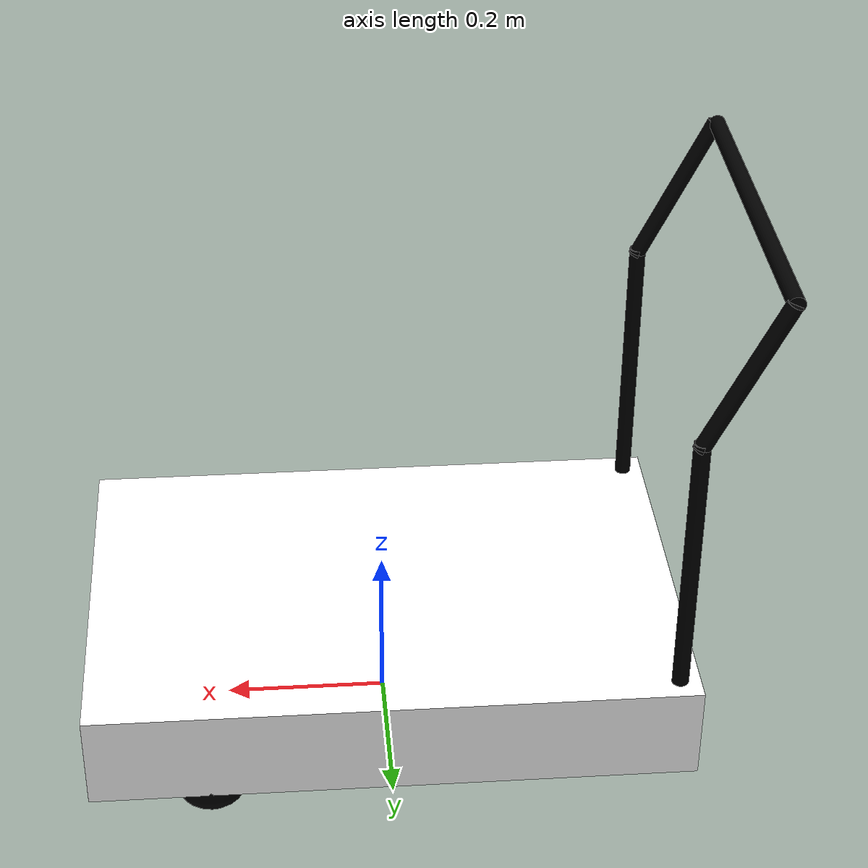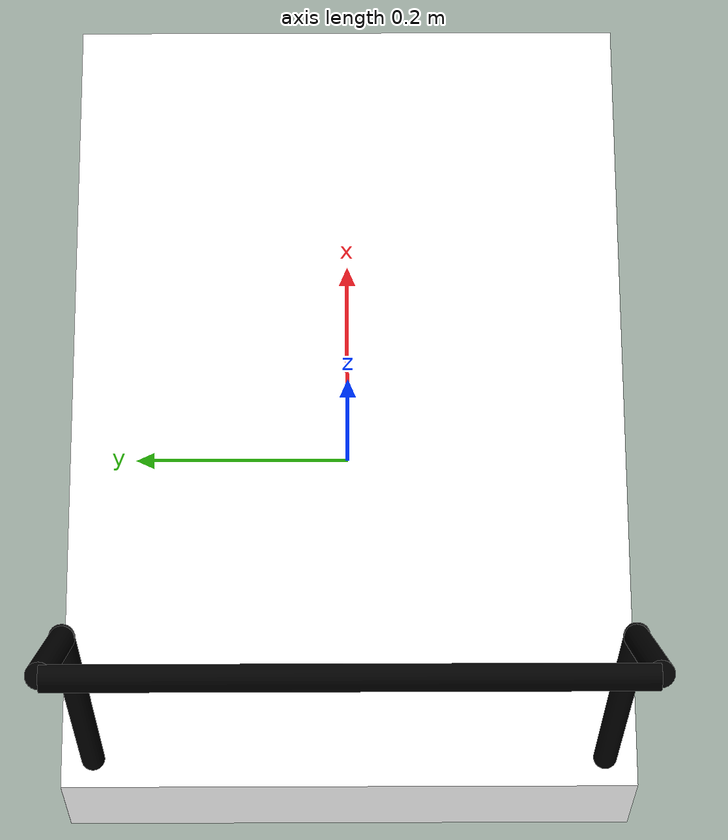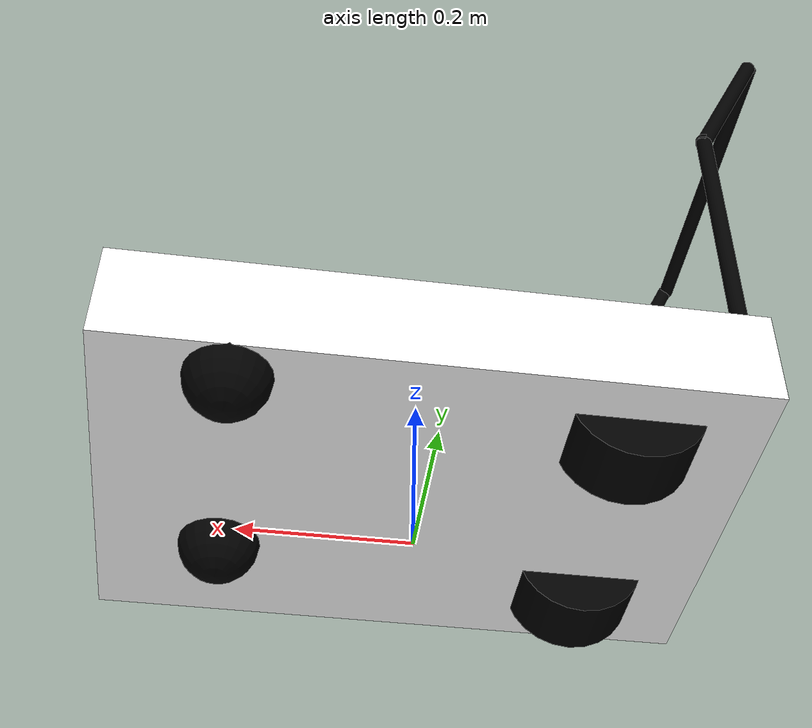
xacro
<?xml version="1.0"?>
<robot name="wheelbarrow" xmlns:xacro="http://ros.org/wiki/xacro">
	<!-- General Macro -->
	<xacro:include filename="$(find config_robot)/urdf/lib/common.urdf.xacro" />
	<!-- Wheel Macro -->
	<xacro:include filename="$(find config_robot)/urdf/lib/wheel/wheel.urdf.xacro" />
	<xacro:include filename="$(find config_robot)/urdf/lib/wheel/caster_wheel.urdf.xacro" />
	<!-- IMU Macro -->
	<xacro:include filename="$(find config_robot)/urdf/lib/sensor/block_imu.urdf.xacro" />
	<!-- Lidar Macro -->
	<xacro:include filename="$(find config_robot)/urdf/lib/sensor/block_lidar.urdf.xacro" />

	<!-- PROPERTY LIST -->
	<!--All units in m-kg-s-radians unit system -->
	<xacro:property name="M_PI_2" value="${pi/2.0}" />

	<!-- AGV Base -->
	<xacro:property name="agv_base_height" value="0.12" />
	<xacro:property name="agv_base_lift" value="0.05" />
	<xacro:property name="agv_base_width" value="0.495" />
	<xacro:property name="agv_base_length" value="0.73" />
	<xacro:property name="agv_base_mass" value="40" />
	<xacro:property name="agv_wheel_height" value="0.07825" />

	<!-- BASE-FOOTPRINT -->
	<!-- base_footprint is a fictitious link(frame) that is on the ground right below base_link origin -->
	<link name="base_footprint"/>

	<!-- AGV_BASE_LINK -->
	<joint name="agv_base_joint" type="fixed">
		<origin xyz="0 0 ${agv_base_height/2+agv_base_lift}" rpy="0 0 0" />
		<parent link="base_footprint"/>
		<child link="agv_base_link" />
	</joint>

	<link name="agv_base_link">
		<!-- body -->
		<xacro:inertia_cuboid mass="${agv_base_mass}" d="${agv_base_length}" w="${agv_base_width}" h="${agv_base_height}" />
		<xacro:collision_cuboid length="${agv_base_length}" width="${agv_base_width}" height="${agv_base_height}" />
		<xacro:visual_cuboid length="${agv_base_length}" width="${agv_base_width}" height="${agv_base_height}" material="White" />

		<!-- handle -->
		<xacro:property name="x" value="0.34"/>
		<xacro:property name="y" value="0.22"/>
		<xacro:property name="radius" value="0.01"/>
		<xacro:property name="base_length" value="0.4"/>
		<xacro:property name="upper_length" value="0.2"/>
		<xacro:property name="handle_length" value="${2*y}"/>
		<xacro:property name="upper_angle" value="${pi/7}"/>

		<!-- handle left_base -->
		<xacro:property name="left_base_xyz" value="-${x} ${y} ${base_length/2}"/>
		<xacro:property name="left_base_rpy" value="0.0 0.0 0.0"/>
		<xacro:inertia_cylinder	mass="0.02" radius="${radius}" length="${base_length}" xyz="${left_base_xyz}" rpy="${left_base_rpy}"/>
		<xacro:collision_cylinder radius="${radius}" length="${base_length}" xyz="${left_base_xyz}" rpy="${left_base_rpy}"/>
		<xacro:visual_cylinder radius="${radius}" length="${base_length}" xyz="${left_base_xyz}" rpy="${left_base_rpy}" />

		<!-- handle right_base -->
		<xacro:property name="right_base_xyz" value="-${x} -${y} ${base_length/2}"/>
		<xacro:property name="right_base_rpy" value="0.0 0.0 0.0"/>
		<xacro:inertia_cylinder	mass="0.02" radius="${radius}" length="${base_length}" xyz="${right_base_xyz}" rpy="${right_base_rpy}"/>
		<xacro:collision_cylinder radius="${radius}" length="${base_length}" xyz="${right_base_xyz}" rpy="${right_base_rpy}"/>
		<xacro:visual_cylinder radius="${radius}" length="${base_length}" xyz="${right_base_xyz}" rpy="${right_base_rpy}" />

		<!-- handle left_upper -->
		<xacro:property name="left_upper_xyz"	value="-${x + upper_length*0.48*sin(upper_angle)} ${y}
																					${base_length + upper_length*0.45*cos(upper_angle)}"/>
		<xacro:property name="left_upper_rpy" value="0.0 -${upper_angle} 0.0"/>
		<xacro:inertia_cylinder	mass="0.02" radius="${radius}" length="${upper_length}" xyz="${left_upper_xyz}" rpy="${left_upper_rpy}"/>
		<xacro:collision_cylinder radius="${radius}" length="${upper_length}" xyz="${left_upper_xyz}" rpy="${left_upper_rpy}"/>
		<xacro:visual_cylinder radius="${radius}" length="${upper_length}" xyz="${left_upper_xyz}" rpy="${left_upper_rpy}" />

		<!-- handle right_upper -->
		<xacro:property name="right_upper_xyz"	value="-${x + upper_length*0.48*sin(upper_angle)} -${y}
																						${base_length + upper_length*0.45*cos(upper_angle)}"/>
		<xacro:property name="right_upper_rpy" value="0.0 -${upper_angle} 0.0"/>
		<xacro:inertia_cylinder	mass="0.02" radius="${radius}" length="${upper_length}" xyz="${right_upper_xyz}" rpy="${right_upper_rpy}"/>
		<xacro:collision_cylinder radius="${radius}" length="${upper_length}" xyz="${right_upper_xyz}" rpy="${right_upper_rpy}"/>
		<xacro:visual_cylinder radius="${radius}" length="${upper_length}" xyz="${right_upper_xyz}" rpy="${right_upper_rpy}" />

		<!-- handle handle -->
		<xacro:property name="handle_xyz"	value="-${x + upper_length*sin(upper_angle)} 0.0
																			${base_length + upper_length*cos(upper_angle) - radius}"/>
		<xacro:property name="handle_rpy" value="${pi/2} 0.0 0.0"/>
		<xacro:inertia_cylinder	mass="0.02" radius="${radius}" length="${handle_length}" xyz="${handle_xyz}" rpy="${handle_rpy}"/>
		<xacro:collision_cylinder radius="${radius}" length="${handle_length}" xyz="${handle_xyz}" rpy="${handle_rpy}"/>
		<xacro:visual_cylinder radius="${radius}" length="${handle_length}" xyz="${handle_xyz}" rpy="${handle_rpy}" />
	</link>

	<!-- IMU -->
	<xacro:block_imu name="imu_link" parent="agv_base_link" xyz="0.0 0.0 0.0" rpy="0.0 0.0 0.0" />

	<!-- WHEEL_CENTER_LINK -->
	<joint name="wheel_center_joint" type="fixed">
		<origin xyz="-0.22 0 0" rpy="0 0 0" />
		<parent link="base_footprint"/>
		<child link="wheel_center_link" />
	</joint>

	<link name="wheel_center_link"/>

	<!-- WHEELS -->
	<xacro:wheel	name="wheel_left" parent="agv_base_link"
													xyz="-0.22 0.15 ${-agv_base_height/2-agv_base_lift + agv_wheel_height}" rpy="${M_PI_2} 0 0" />
	<xacro:wheel	name="wheel_right" parent="agv_base_link"
													xyz="-0.22 -0.15 ${-agv_base_height/2-agv_base_lift + agv_wheel_height}" rpy="${-M_PI_2} 0 0" />
	<xacro:caster_wheel	name="caster_left" parent="agv_base_link"
													xyz="0.22 0.15 ${-agv_base_height/2-agv_base_lift + agv_wheel_height}" rpy="0 ${pi} 0" />
	<xacro:caster_wheel	name="caster_right" parent="agv_base_link"
													xyz="0.22 -0.15 ${-agv_base_height/2-agv_base_lift + agv_wheel_height}" rpy="0 ${pi} 0" />

</robot>

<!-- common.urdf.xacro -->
<robot xmlns:xacro="http://www.ros.org/wiki/xacro">
	<material name="Black">
		<color rgba="0.0 0.0 0.0 1.0"/>
	</material>

	<material name="Red">
		<color rgba="0.8 0.0 0.0 1.0"/>
	</material>

	<material name="White">
		<color rgba="1.0 1.0 1.0 1.0"/>
	</material>

	<material name="Blue">
		<color rgba="0.0 0.0 0.8 1.0"/>
	</material>

  <!-- Macro for calculating inertia of cylinder -->
	<xacro:macro name="inertia_cylinder" params="mass radius length xyz:='0 0 0' rpy:='0 0 0'">
		<inertial>
			<origin xyz="${xyz}" rpy="${rpy}"/>
			<mass value="${mass}"/>
			<inertia	ixx="${mass*(3*radius*radius+length*length)/12}" ixy = "0" ixz = "0"
								iyy="${mass*(3*radius*radius+length*length)/12}" iyz = "0"
								izz="${mass*radius*radius/2}" />
		</inertial>
	</xacro:macro>

  <!-- Macro for calculating inertia of sphere -->
	<xacro:macro name="inertia_sphere" params="radius rho:=1000 xyz:='0 0 0' rpy:='0 0 0'">
		<xacro:property name="mass" value="${4/3*rho*pi*radius**3}"/>
		<inertial>
			<origin xyz="${xyz}" rpy="${rpy}"/>
			<mass value="${mass}"/>
			<inertia	ixx="${(2/5*mass)*(radius**2)}" ixy="0" ixz="0"
								iyy="${(2/5*mass)*(radius**2)}"  iyz="0"
								izz="${(2/5*mass)*(radius**2)}" />
		</inertial>
	</xacro:macro>

	<!-- Macro for calculating inertia of cube -->
	<xacro:macro name="inertia_cuboid" params="mass w d h xyz:='0 0 0' rpy:='0 0 0'">
	<inertial>
		<origin xyz="${xyz}" rpy="${rpy}"/>
		<mass value="${mass}"/>
		<inertia	ixx="${mass*(h*h+d*d)/12}" ixy = "0" ixz = "0"
							iyy="${mass*(w*w+d*d)/12}" iyz = "0"
							izz="${mass*(w*w+h*h)/12}" />
		</inertial>
	</xacro:macro>

	<xacro:macro name="collision_cylinder" params="radius length xyz:='0 0 0' rpy:='0 0 0'">
		<collision>
			<origin xyz="${xyz}" rpy="${rpy}"/>
			<geometry>
				<cylinder radius="${radius}" length="${length}" />
			</geometry>
		</collision>
	</xacro:macro>

	<xacro:macro name="collision_sphere" params="radius xyz:='0 0 0' rpy:='0 0 0'">
		<collision>
			<origin xyz="${xyz}" rpy="${rpy}"/>
			<geometry>
				<sphere radius="${radius}"/>
			</geometry>
		</collision>
	</xacro:macro>

	<xacro:macro name="collision_cuboid" params="length width height xyz:='0 0 0' rpy:='0 0 0'">
		<collision>
			<origin xyz="0 0 0" rpy="0 0 0" />
			<geometry>
				<box size="${length} ${width} ${height}" />
			</geometry>
		</collision>
	</xacro:macro>

	<xacro:macro name="visual_sphere" params="radius xyz:='0 0 0' rpy:='0 0 0' material:='Black'">
		<visual>
			<origin xyz="${xyz}" rpy="${rpy}"/>
			<geometry>
				<sphere radius="${radius}"/>
			</geometry>
			<material name="${material}" />
		</visual>
	</xacro:macro>

	<xacro:macro name="visual_cylinder" params="radius length xyz:='0 0 0' rpy:='0 0 0' material:='Black'">
		<visual>
			<origin xyz="${xyz}" rpy="${rpy}"/>
			<geometry>
				<cylinder radius="${radius}" length="${length}" />
			</geometry>
			<material name="${material}" />
		</visual>
	</xacro:macro>

	<xacro:macro name="visual_cuboid" params="length width height xyz:='0 0 0' rpy:='0 0 0' material:='Black'">
		<visual>
			<origin xyz="0 0 0" rpy="0 0 0" />
			<geometry>
				<box size="${length} ${width} ${height}" />
			</geometry>
			<material name="${material}" />
		</visual>
	</xacro:macro>
</robot>

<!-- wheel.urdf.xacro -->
<robot xmlns:xacro="http://www.ros.org/wiki/xacro">
	<xacro:macro name="wheel" params="name parent xyz:='0 0 0' rpy:='0 0 0'">
		<xacro:property name="radius" value="0.07825"/>
		<xacro:property name="length" value="0.085"/>
		<xacro:property name="rho" value="1046.3516"/>
		<xacro:property name="mass" value="2.1"/>

		<joint name="${name}_joint" type="continuous">
			<axis xyz="0 0 1" />
			<origin xyz="${xyz}" rpy="${rpy}" />
			<parent link="${parent}" />
			<child link="${name}" />
			<dynamics damping="1.0" friction="0.0" />
		</joint>

		<link name="${name}">
			<!-- Make the wheel has one point contact to the ground -->
			<xacro:inertia_sphere rho="${rho}" radius="${radius}" />
			<xacro:collision_sphere radius="${radius}" />
			<!-- Show as a cylinder -->
			<xacro:visual_cylinder radius="${radius}" length="${length}" />
		</link>
	</xacro:macro>
</robot>

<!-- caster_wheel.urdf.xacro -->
<robot xmlns:xacro="http://www.ros.org/wiki/xacro">
	<xacro:macro name="caster_wheel" params="name parent xyz:='0 0 0' rpy:='0 0 0'">
		<xacro:property name="radius" value="0.07825"/>
		<xacro:property name="rho" value="1046.3516"/>

		<joint name="${name}_joint" type="continuous">
			<axis xyz="0 0 1" />
			<origin xyz="${xyz}" rpy="${rpy}" />
			<parent link="${parent}" />
			<child link="${name}_planner" />
			<dynamics damping="0.01" friction="0.0" />
		</joint>

		<link name="${name}_planner">
			<xacro:inertia_cylinder mass="0.2" radius="0.03" length="0.01" />
			<xacro:collision_cylinder radius="0.03" length="0.03" />
			<xacro:visual_cylinder radius="0.03" length="0.03" />
		</link>
		<joint name="${name}_planner_joint" type="continuous">
			<axis xyz="1 0 0" />
			<origin xyz="0 0.05 0.03" rpy="0 0 0" />
			<parent link="${name}_planner" />
			<child link="${name}" />
			<dynamics damping="0.01" friction="0.0" />
		</joint>

		<link name="${name}">
			<xacro:inertia_sphere rho="${rho}" radius="${radius-0.03}" />
			<xacro:collision_sphere radius="${radius-0.03}" />
			<xacro:visual_sphere radius="${radius-0.03}" />
		</link>

	</xacro:macro>
</robot>

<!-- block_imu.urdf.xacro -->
<robot xmlns:xacro="http://www.ros.org/wiki/xacro">
	<!-- lidar -->
	<xacro:property name="imu_size" value="0.001" />

	<xacro:macro name="imu_gazebo" params="name">
		<gazebo reference="${name}">
			<gravity>true</gravity>
			<sensor type="imu" name="${name}">
				<always_on>true</always_on>
				<update_rate>500</update_rate>
				<visualize>true</visualize>
				<topic>__default_topic__</topic>
				<plugin filename="libgazebo_ros_imu_sensor.so" name="imu_plugin">
					<topicName>imu</topicName>
					<bodyName>imu_link</bodyName>
					<updateRateHZ>100.0</updateRateHZ>
					<gaussianNoise>0.0</gaussianNoise>
					<xyzOffset>0 0 0</xyzOffset>
					<rpyOffset>0 0 0</rpyOffset>
					<frameName>imu_link</frameName>
					<initialOrientationAsReference>false</initialOrientationAsReference>
				</plugin>
				<pose>0 0 0 0 0 0</pose>
			</sensor>
		</gazebo>
	</xacro:macro>

	<xacro:macro name="block_imu" params="name parent xyz:='0 0 0' rpy:='0 0 0'">
		<joint name="${name}_joint" type="fixed">
			<origin xyz="${xyz}" rpy="${rpy}" />
			<parent link="${parent}" />
			<child link="${name}" />
		</joint>

		<link name="${name}">
			<xacro:inertia_cuboid mass="0.01" d="${imu_size}" w="${imu_size}" h="${imu_size}" />
			<xacro:collision_cuboid length="${imu_size}" width="${imu_size}" height="${imu_size}" />
			<xacro:visual_cuboid length="${imu_size}" width="${imu_size}" height="${imu_size}"  material="Blue" />
		</link>
	</xacro:macro>
</robot>
